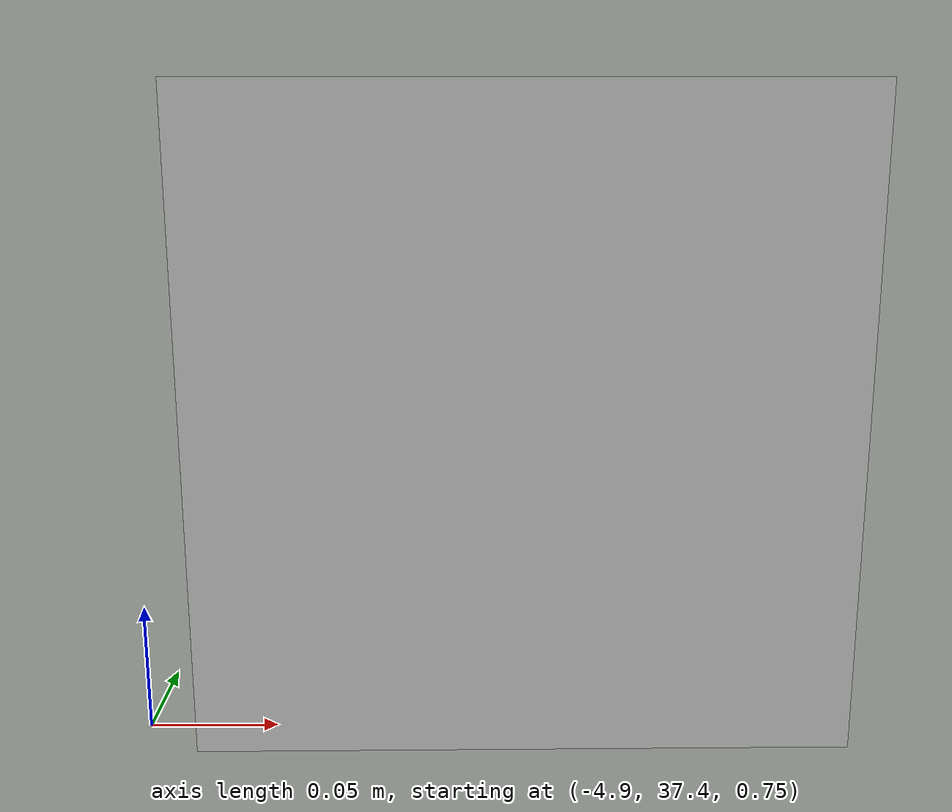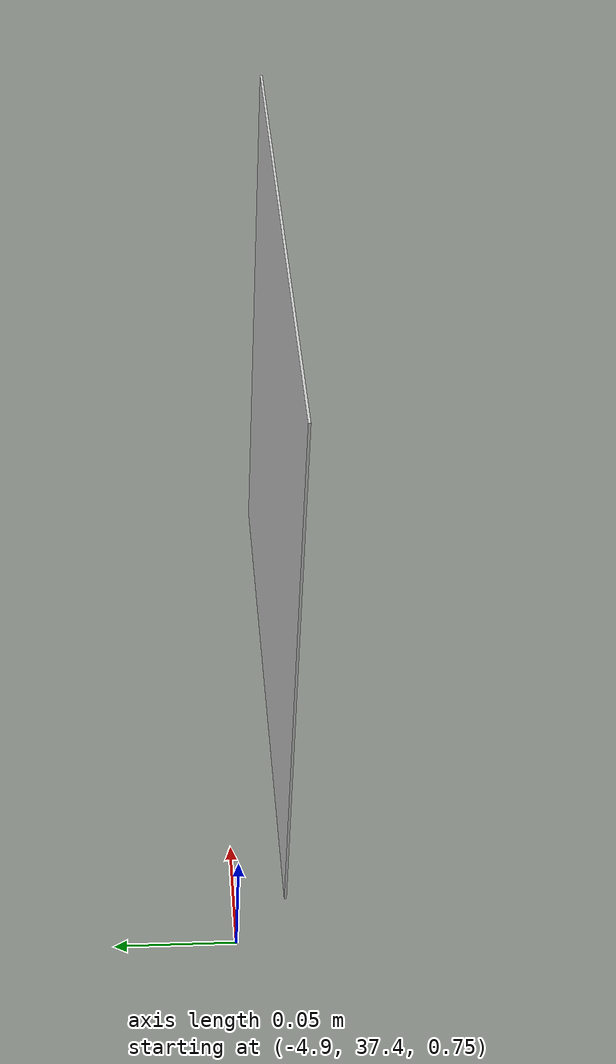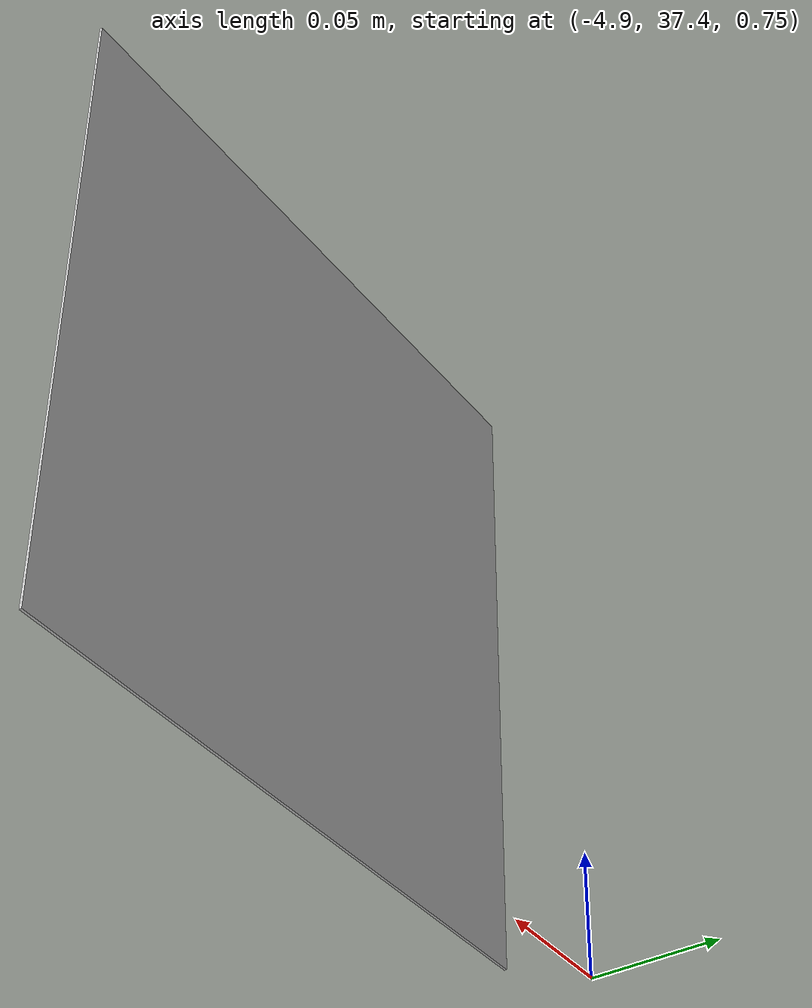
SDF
<?xml version="1.0" ?>
<sdf version="1.5">
  <model name="plot_factory_station3">
     <static>true</static>
     <pose>0 0 0.4 0 0 0</pose>
     <link name="link">
      <collision name="collision">
        <geometry>
          <mesh>
            <uri>model://plot_factory_station3/meshes/plotqr.dae</uri>
          </mesh>
        </geometry>
      </collision>
      <visual name="visual">
        <geometry>
          <mesh>
            <uri>model://plot_factory_station3/meshes/plotqr.dae</uri>
          </mesh>
        </geometry>
        <material>
          <script>
            <name>Station3</name>
            <uri>model://plot_factory_station3/materials/scripts</uri>
            <uri>model://plot_factory_station3/materials/textures</uri>
          </script>
        </material>
      </visual>
    </link>
  </model>
</sdf>
